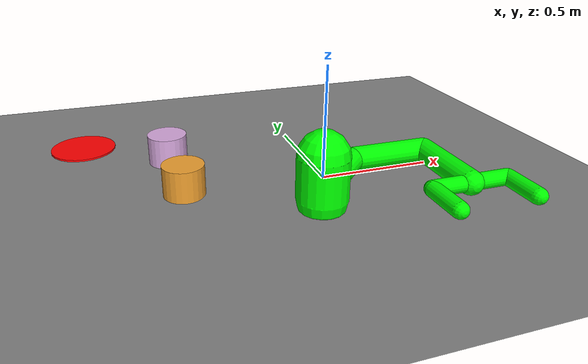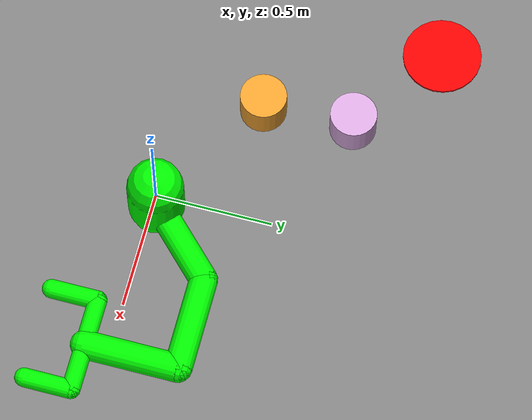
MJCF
<mujoco model="arm3d">
	<compiler inertiafromgeom="true" angle="radian" coordinate="local"/>
	<option timestep="0.01" integrator="Euler" gravity="0 0 0" iterations="20"/>
	<default >
		<joint limited="true" armature="0.04" damping="1"/>
		<geom density="300" friction="0.8 0.1 0.1" conaffinity="1" contype="1" condim="1" margin="0.002"/>
	</default>
	<worldbody >
		<light dir="0 0 -1" pos="0 0 3" diffuse=".5 .5 .5"/>
		<geom conaffinity="1" name="table" contype="1" type="plane" size="2 2 0.1" pos="0 0.5 -0.15"/>
		<body name="palm" pos="0 0 0">
			<geom type="capsule" rgba="0. 1. 0. 1" fromto="0 0 -0.1 0 0 0.1" size="0.12"/>
			<body name="proximal_1" axisangle="0 0 1 0.785" pos="0 0 -0.075">
				<joint range="-2.5 2.5" pos="0 0 0" name="proximal_j_1" type="hinge" axis="0 0 1" damping="1.0"/>
				<geom rgba="0. 1. 0. 1" conaffinity="1" contype="1" type="capsule" fromto="0 0 0 0.4 0 0" size="0.06"/>
				<body name="distal_1" axisangle="0 0 1 -0.785" pos="0.4 0 0">
					<joint range="-2.3213 2.3" pos="0 0 0" name="distal_j_1" type="hinge" axis="0 0 1" damping="1.0"/>
					<geom rgba="0. 1. 0. 1" conaffinity="1" contype="1" type="capsule" fromto="0 0 0 0.4 0 0" size="0.06"/>
					<body name="distal_2" axisangle="0 0 1 -1.57" pos="0.4 0 0">
						<joint range="-2.3213 2.3" pos="0 0 0" name="distal_j_2" type="hinge" axis="0 0 1" damping="1.0"/>
						<geom rgba="0. 1. 0. 1" conaffinity="1" contype="1" type="capsule" fromto="0 0 0 0.4 0 0" size="0.06"/>
						<body name="distal_4" pos="0.4 0 0">
							<site name="tip arml" size="0.01" pos="0.1 -0.2 0"/>
							<site name="tip armr" size="0.01" pos="0.1 0.2 0"/>
							<geom rgba="0. 1. 0. 1" conaffinity="1" contype="1" type="capsule" fromto="0 -0.2 0 0 0.2 0" size="0.04"/>
							<geom rgba="0. 1. 0. 1" conaffinity="1" contype="1" type="capsule" fromto="0 -0.2 0 0.2 -0.2 0" size="0.04"/>
							<geom rgba="0. 1. 0. 1" conaffinity="1" contype="1" type="capsule" fromto="0 0.2 0 0.2 0.2 0" size="0.04"/>
						</body>
					</body>
				</body>
			</body>
		</body>
		<body name="distractor" pos="-0.5745704958610034 0.7079662992325824 -0.1">
			<geom density="0.00001" rgba="0.8342996477946444 0.6515062311888304 0.8589114036945165 1.0" conaffinity="1" contype="1" type="cylinder" size="0.1 0.1 0.1"/>
			<joint range="-10.3213 10.3" pos="0.025 0.025 0.025" name="distractor_slidey" type="slide" axis="0 1 0" damping="0.5"/>
			<joint range="-10.3213 10.3" pos="0.025 0.025 0.025" name="distractor_slidex" type="slide" axis="1 0 0" damping="0.5"/>
		</body>
		<body name="object" pos="-0.5584775364045662 0.31757791992969886 -0.1">
			<geom density="0.00001" rgba="0.9242374105367737 0.6200196937325998 0.18294474431999186 1.0" conaffinity="1" contype="1" type="cylinder" size="0.1 0.1 0.1"/>
			<joint range="-10.3213 10.3" pos="0.025 0.025 0.025" name="obj_slidey" type="slide" axis="0 1 0" damping="0.5"/>
			<joint range="-10.3213 10.3" pos="0.025 0.025 0.025" name="obj_slidex" type="slide" axis="1 0 0" damping="0.5"/>
		</body>
		<body name="goal" pos="-1.0 1.0 -0.145">
			<geom density="0.00001" rgba="1 0 0 1" conaffinity="0" contype="0" type="cylinder" size="0.17 0.005 0.2"/>
			<joint range="-10.3213 10.3" pos="0 0 0" name="goal_slidey" type="slide" axis="0 1 0" damping="0.5"/>
			<joint range="-10.3213 10.3" pos="0 0 0" name="goal_slidex" type="slide" axis="1 0 0" damping="0.5"/>
		</body>
	</worldbody>
	<actuator >
		<motor ctrllimited="true" joint="proximal_j_1" ctrlrange="-3.0 3.0"/>
		<motor ctrllimited="true" joint="distal_j_1" ctrlrange="-3.0 3.0"/>
		<motor ctrllimited="true" joint="distal_j_2" ctrlrange="-3.0 3.0"/>
	</actuator>
</mujoco>
